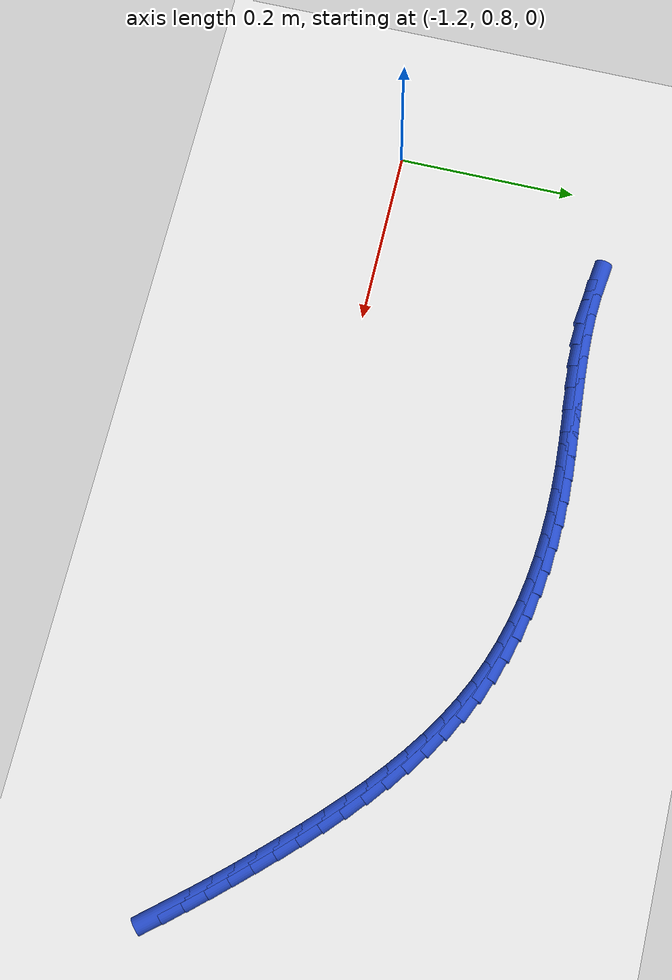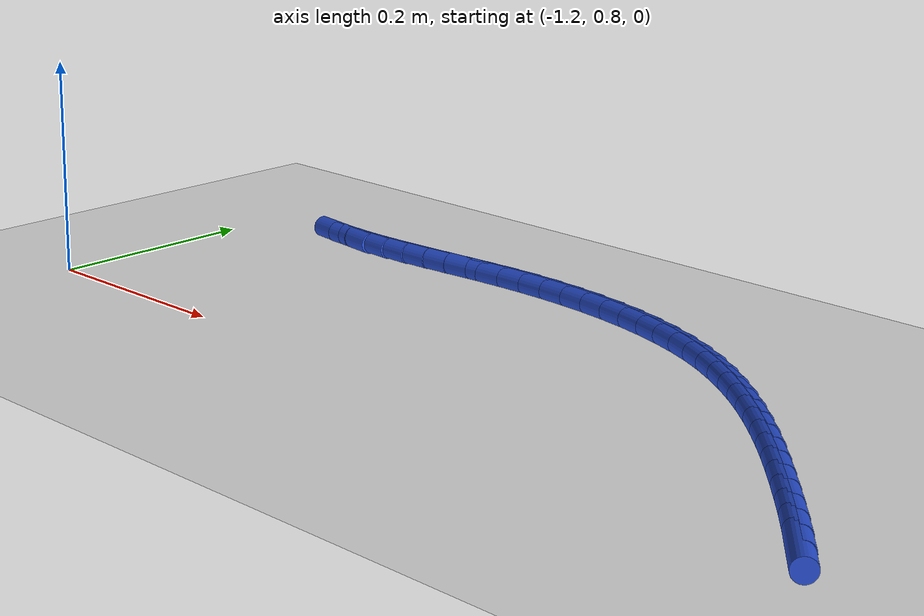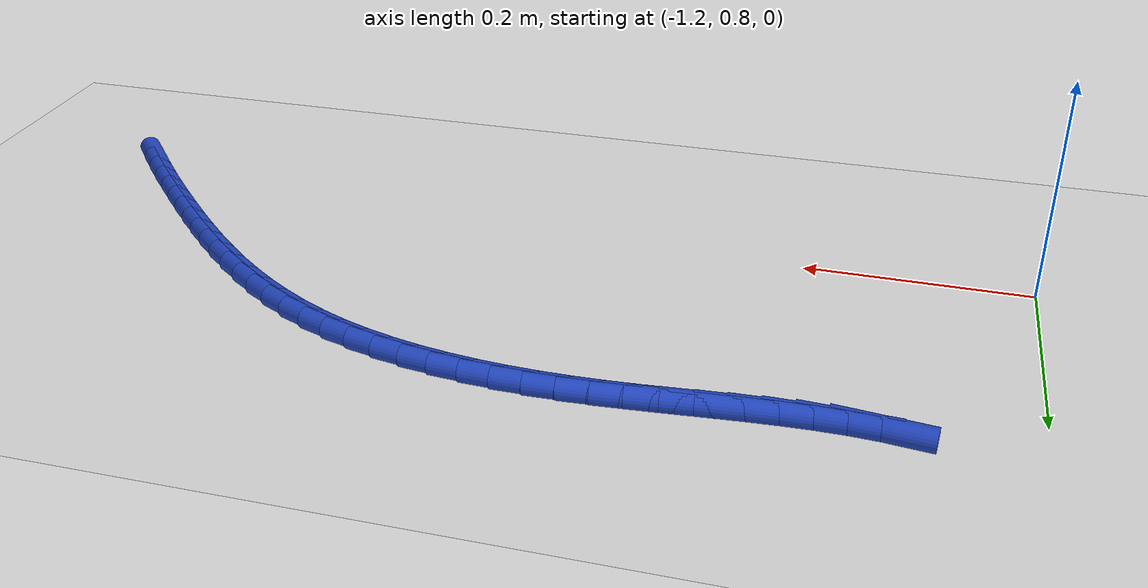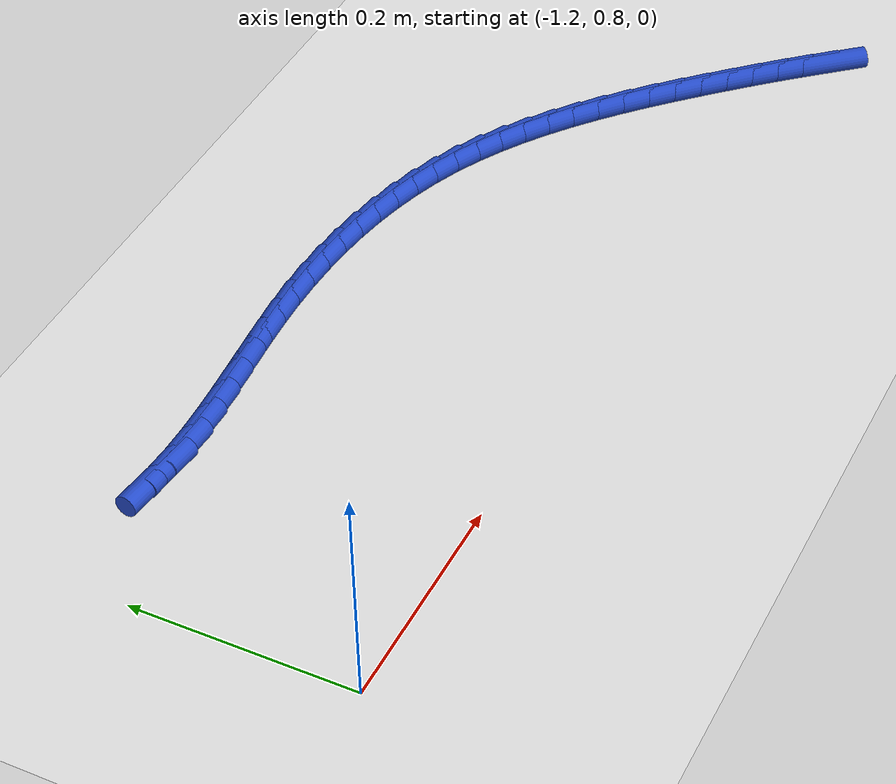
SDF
<sdf version="1.6">
 <world name="default">
  <model name="ground_plane">
   <static>1</static>
   <link name="link">
    <collision name="collision">
     <geometry><plane><normal>0 0 1</normal><size>100 100</size></plane></geometry>
     <surface><friction><ode><mu>100</mu><mu2>50</mu2></ode></friction></surface>
    </collision>
    <visual name="visual">
     <cast_shadows>0</cast_shadows>
     <geometry><plane><normal>0 0 1</normal><size>100 100</size></plane></geometry>
     <material>
      <script><uri>file://media/materials/scripts/gazebo.material</uri><name>Gazebo/WhiteGlow</name></script>
     </material>
    </visual>
   </link>
  </model>
  <model name="line">
   <link name="link_33">
    <pose>-0.33387703514484834 0.7603630949787261 0.01 0 1.57 -0.8708939179314461</pose>
    <collision name="collision">
     <geometry><cylinder><radius>0.01</radius><length>0.08</length></cylinder></geometry>
    </collision>
    <visual name="visual">
     <material>
      <script><name>Gazebo/Blue</name><uri>file://media/materials/scripts/gazebo.material</uri></script>
     </material>
     <geometry><cylinder><radius>0.01</radius><length>0.08</length></cylinder></geometry>
    </visual>
   </link>
   <link name="link_34">
    <pose>-0.35035462740354545 0.7799298569567302 0.01 0 1.57 -0.8523707451338214</pose>
    <collision name="collision">
     <geometry><cylinder><radius>0.01</radius><length>0.08</length></cylinder></geometry>
    </collision>
    <visual name="visual">
     <material>
      <script><name>Gazebo/Blue</name><uri>file://media/materials/scripts/gazebo.material</uri></script>
     </material>
     <geometry><cylinder><radius>0.01</radius><length>0.08</length></cylinder></geometry>
    </visual>
   </link>
   <link name="link_35">
    <pose>-0.36724689501147334 0.7992510672967577 0.01 0 1.57 -0.8364481841553267</pose>
    <collision name="collision">
     <geometry><cylinder><radius>0.01</radius><length>0.08</length></cylinder></geometry>
    </collision>
    <visual name="visual">
     <material>
      <script><name>Gazebo/Blue</name><uri>file://media/materials/scripts/gazebo.material</uri></script>
     </material>
     <geometry><cylinder><radius>0.01</radius><length>0.08</length></cylinder></geometry>
    </visual>
   </link>
   <link name="link_36">
    <pose>-0.38451191001075796 0.8183753733403278 0.01 0 1.57 -0.8231200362365712</pose>
    <collision name="collision">
     <geometry><cylinder><radius>0.01</radius><length>0.08</length></cylinder></geometry>
    </collision>
    <visual name="visual">
     <material>
      <script><name>Gazebo/Blue</name><uri>file://media/materials/scripts/gazebo.material</uri></script>
     </material>
     <geometry><cylinder><radius>0.01</radius><length>0.08</length></cylinder></geometry>
    </visual>
   </link>
   <link name="link_37">
    <pose>-0.4021077444435248 0.8373514224289584 0.01 0 1.57 -0.8119673398129457</pose>
    <collision name="collision">
     <geometry><cylinder><radius>0.01</radius><length>0.08</length></cylinder></geometry>
    </collision>
    <visual name="visual">
     <material>
      <script><name>Gazebo/Blue</name><uri>file://media/materials/scripts/gazebo.material</uri></script>
     </material>
     <geometry><cylinder><radius>0.01</radius><length>0.08</length></cylinder></geometry>
    </visual>
   </link>
   <link name="link_38">
    <pose>-0.4199971539812612 0.8562176282533777 0.01 0 1.57 -0.798811067101024</pose>
    <collision name="collision">
     <geometry><cylinder><radius>0.01</radius><length>0.08</length></cylinder></geometry>
    </collision>
    <visual name="visual">
     <material>
      <script><name>Gazebo/Blue</name><uri>file://media/materials/scripts/gazebo.material</uri></script>
     </material>
     <geometry><cylinder><radius>0.01</radius><length>0.08</length></cylinder></geometry>
    </visual>
   </link>
   <link name="link_39">
    <pose>-0.4381913393459131 0.8749065528899727 0.01 0 1.57 -0.7811426018957505</pose>
    <collision name="collision">
     <geometry><cylinder><radius>0.01</radius><length>0.08</length></cylinder></geometry>
    </collision>
    <visual name="visual">
     <material>
      <script><name>Gazebo/Blue</name><uri>file://media/materials/scripts/gazebo.material</uri></script>
     </material>
     <geometry><cylinder><radius>0.01</radius><length>0.08</length></cylinder></geometry>
    </visual>
   </link>
   <link name="link_40">
    <pose>-0.456730123643245 0.8932882189915008 0.01 0 1.57 -0.7588236196741744</pose>
    <collision name="collision">
     <geometry><cylinder><radius>0.01</radius><length>0.08</length></cylinder></geometry>
    </collision>
    <visual name="visual">
     <material>
      <script><name>Gazebo/Blue</name><uri>file://media/materials/scripts/gazebo.material</uri></script>
     </material>
     <geometry><cylinder><radius>0.01</radius><length>0.08</length></cylinder></geometry>
    </visual>
   </link>
   <link name="link_41">
    <pose>-0.47565370156563785 0.9112318373002578 0.01 0 1.57 -0.7317024142300346</pose>
    <collision name="collision">
     <geometry><cylinder><radius>0.01</radius><length>0.08</length></cylinder></geometry>
    </collision>
    <visual name="visual">
     <material>
      <script><name>Gazebo/Blue</name><uri>file://media/materials/scripts/gazebo.material</uri></script>
     </material>
     <geometry><cylinder><radius>0.01</radius><length>0.08</length></cylinder></geometry>
    </visual>
   </link>
   <link name="link_42">
    <pose>-0.4950022678054731 0.9286066185585412 0.01 0 1.57 -0.6995943235205871</pose>
    <collision name="collision">
     <geometry><cylinder><radius>0.01</radius><length>0.08</length></cylinder></geometry>
    </collision>
    <visual name="visual">
     <material>
      <script><name>Gazebo/Blue</name><uri>file://media/materials/scripts/gazebo.material</uri></script>
     </material>
     <geometry><cylinder><radius>0.01</radius><length>0.08</length></cylinder></geometry>
    </visual>
   </link>
   <link name="link_43">
    <pose>-0.5148160170551314 0.9452817735086463 0.01 0 1.57 -0.6622983901922096</pose>
    <collision name="collision">
     <geometry><cylinder><radius>0.01</radius><length>0.08</length></cylinder></geometry>
    </collision>
    <visual name="visual">
     <material>
      <script><name>Gazebo/Blue</name><uri>file://media/materials/scripts/gazebo.material</uri></script>
     </material>
     <geometry><cylinder><radius>0.01</radius><length>0.08</length></cylinder></geometry>
    </visual>
   </link>
   <link name="link_44">
    <pose>-0.5351351440069936 0.9611265128928697 0.01 0 1.57 -0.6196201285562538</pose>
    <collision name="collision">
     <geometry><cylinder><radius>0.01</radius><length>0.08</length></cylinder></geometry>
    </collision>
    <visual name="visual">
     <material>
      <script><name>Gazebo/Blue</name><uri>file://media/materials/scripts/gazebo.material</uri></script>
     </material>
     <geometry><cylinder><radius>0.01</radius><length>0.08</length></cylinder></geometry>
    </visual>
   </link>
   <link name="link_45">
    <pose>-0.5559998433534409 0.9760100474535072 0.01 0 1.57 -0.5714019634579988</pose>
    <collision name="collision">
     <geometry><cylinder><radius>0.01</radius><length>0.08</length></cylinder></geometry>
    </collision>
    <visual name="visual">
     <material>
      <script><name>Gazebo/Blue</name><uri>file://media/materials/scripts/gazebo.material</uri></script>
     </material>
     <geometry><cylinder><radius>0.01</radius><length>0.08</length></cylinder></geometry>
    </visual>
   </link>
   <link name="link_46">
    <pose>-0.5774503097868543 0.9898015879328559 0.01 0 1.57 -0.5175621459052533</pose>
    <collision name="collision">
     <geometry><cylinder><radius>0.01</radius><length>0.08</length></cylinder></geometry>
    </collision>
    <visual name="visual">
     <material>
      <script><name>Gazebo/Blue</name><uri>file://media/materials/scripts/gazebo.material</uri></script>
     </material>
     <geometry><cylinder><radius>0.01</radius><length>0.08</length></cylinder></geometry>
    </visual>
   </link>
   <link name="link_47">
    <pose>-0.599526737999615 1.0023703450732118 0.01 0 1.57 -0.45814125110068626</pose>
    <collision name="collision">
     <geometry><cylinder><radius>0.01</radius><length>0.08</length></cylinder></geometry>
    </collision>
    <visual name="visual">
     <material>
      <script><name>Gazebo/Blue</name><uri>file://media/materials/scripts/gazebo.material</uri></script>
     </material>
     <geometry><cylinder><radius>0.01</radius><length>0.08</length></cylinder></geometry>
    </visual>
   </link>
   <link name="link_48">
    <pose>-0.6222693226841037 1.0135855296168714 0.01 0 1.57 -0.39475051642981374</pose>
    <collision name="collision">
     <geometry><cylinder><radius>0.01</radius><length>0.08</length></cylinder></geometry>
    </collision>
    <visual name="visual">
     <material>
      <script><name>Gazebo/Blue</name><uri>file://media/materials/scripts/gazebo.material</uri></script>
     </material>
     <geometry><cylinder><radius>0.01</radius><length>0.08</length></cylinder></geometry>
    </visual>
   </link>
   <link name="link_49">
    <pose>-0.6456992980306332 1.0233469028677804 0.01 0 1.57 -0.33352731708520483</pose>
    <collision name="collision">
     <geometry><cylinder><radius>0.01</radius><length>0.08</length></cylinder></geometry>
    </collision>
    <visual name="visual">
     <material>
      <script><name>Gazebo/Blue</name><uri>file://media/materials/scripts/gazebo.material</uri></script>
     </material>
     <geometry><cylinder><radius>0.01</radius><length>0.08</length></cylinder></geometry>
    </visual>
   </link>
   <link name="link_50">
    <pose>-0.6697582162471432 1.0316826156264276 0.01 0 1.57 -0.2760789925601923</pose>
    <collision name="collision">
     <geometry><cylinder><radius>0.01</radius><length>0.08</length></cylinder></geometry>
    </collision>
    <visual name="visual">
     <material>
      <script><name>Gazebo/Blue</name><uri>file://media/materials/scripts/gazebo.material</uri></script>
     </material>
     <geometry><cylinder><radius>0.01</radius><length>0.08</length></cylinder></geometry>
    </visual>
   </link>
   <link name="link_51">
    <pose>-0.6943667009412988 1.0386545404001797 0.01 0 1.57 -0.222350610748899</pose>
    <collision name="collision">
     <geometry><cylinder><radius>0.01</radius><length>0.08</length></cylinder></geometry>
    </collision>
    <visual name="visual">
     <material>
      <script><name>Gazebo/Blue</name><uri>file://media/materials/scripts/gazebo.material</uri></script>
     </material>
     <geometry><cylinder><radius>0.01</radius><length>0.08</length></cylinder></geometry>
    </visual>
   </link>
   <link name="link_52">
    <pose>-0.7194453756318744 1.0443245498396265 0.01 0 1.57 -0.1722095091716396</pose>
    <collision name="collision">
     <geometry><cylinder><radius>0.01</radius><length>0.08</length></cylinder></geometry>
    </collision>
    <visual name="visual">
     <material>
      <script><name>Gazebo/Blue</name><uri>file://media/materials/scripts/gazebo.material</uri></script>
     </material>
     <geometry><cylinder><radius>0.01</radius><length>0.08</length></cylinder></geometry>
    </visual>
   </link>
   <link name="link_53">
    <pose>-0.7449148638376442 1.0487545165953598 0.01 0 1.57 -0.12546931119351024</pose>
    <collision name="collision">
     <geometry><cylinder><radius>0.01</radius><length>0.08</length></cylinder></geometry>
    </collision>
    <visual name="visual">
     <material>
      <script><name>Gazebo/Blue</name><uri>file://media/materials/scripts/gazebo.material</uri></script>
     </material>
     <geometry><cylinder><radius>0.01</radius><length>0.08</length></cylinder></geometry>
    </visual>
   </link>
   <link name="link_54">
    <pose>-0.7706957890773829 1.052006313317971 0.01 0 1.57 -0.08190991088015818</pose>
    <collision name="collision">
     <geometry><cylinder><radius>0.01</radius><length>0.08</length></cylinder></geometry>
    </collision>
    <visual name="visual">
     <material>
      <script><name>Gazebo/Blue</name><uri>file://media/materials/scripts/gazebo.material</uri></script>
     </material>
     <geometry><cylinder><radius>0.01</radius><length>0.08</length></cylinder></geometry>
    </visual>
   </link>
   <link name="link_55">
    <pose>-0.7967087748698647 1.0541418126580515 0.01 0 1.57 -0.041293041287598295</pose>
    <collision name="collision">
     <geometry><cylinder><radius>0.01</radius><length>0.08</length></cylinder></geometry>
    </collision>
    <visual name="visual">
     <material>
      <script><name>Gazebo/Blue</name><uri>file://media/materials/scripts/gazebo.material</uri></script>
     </material>
     <geometry><cylinder><radius>0.01</radius><length>0.08</length></cylinder></geometry>
    </visual>
   </link>
   <link name="link_56">
    <pose>-0.8228744447338638 1.0552228872661922 0.01 0 1.57 -0.003373690575349256</pose>
    <collision name="collision">
     <geometry><cylinder><radius>0.01</radius><length>0.08</length></cylinder></geometry>
    </collision>
    <visual name="visual">
     <material>
      <script><name>Gazebo/Blue</name><uri>file://media/materials/scripts/gazebo.material</uri></script>
     </material>
     <geometry><cylinder><radius>0.01</radius><length>0.08</length></cylinder></geometry>
    </visual>
   </link>
   <link name="link_57">
    <pose>-0.8491134221881547 1.055311409792985 0.01 0 1.57 0.03177036529365382</pose>
    <collision name="collision">
     <geometry><cylinder><radius>0.01</radius><length>0.08</length></cylinder></geometry>
    </collision>
    <visual name="visual">
     <material>
      <script><name>Gazebo/Blue</name><uri>file://media/materials/scripts/gazebo.material</uri></script>
     </material>
     <geometry><cylinder><radius>0.01</radius><length>0.08</length></cylinder></geometry>
    </visual>
   </link>
   <link name="link_58">
    <pose>-0.8753478586387028 1.054477651625166 0.01 0 1.57 0.059612233916372506</pose>
    <collision name="collision">
     <geometry><cylinder><radius>0.01</radius><length>0.08</length></cylinder></geometry>
    </collision>
    <visual name="visual">
     <material>
      <script><name>Gazebo/Blue</name><uri>file://media/materials/scripts/gazebo.material</uri></script>
     </material>
     <geometry><cylinder><radius>0.01</radius><length>0.08</length></cylinder></geometry>
    </visual>
   </link>
   <link name="link_59">
    <pose>-0.901522389609654 1.0529154784679629 0.01 0 1.57 0.07664816412750622</pose>
    <collision name="collision">
     <geometry><cylinder><radius>0.01</radius><length>0.08</length></cylinder></geometry>
    </collision>
    <visual name="visual">
     <material>
      <script><name>Gazebo/Blue</name><uri>file://media/materials/scripts/gazebo.material</uri></script>
     </material>
     <geometry><cylinder><radius>0.01</radius><length>0.08</length></cylinder></geometry>
    </visual>
   </link>
   <link name="link_60">
    <pose>-0.9275987678306554 1.0509128486359425 0.01 0 1.57 0.08279923389420403</pose>
    <collision name="collision">
     <geometry><cylinder><radius>0.01</radius><length>0.08</length></cylinder></geometry>
    </collision>
    <visual name="visual">
     <material>
      <script><name>Gazebo/Blue</name><uri>file://media/materials/scripts/gazebo.material</uri></script>
     </material>
     <geometry><cylinder><radius>0.01</radius><length>0.08</length></cylinder></geometry>
    </visual>
   </link>
   <link name="link_61">
    <pose>-0.9535391754466055 1.0487600809225226 0.01 0 1.57 0.0779500344412997</pose>
    <collision name="collision">
     <geometry><cylinder><radius>0.01</radius><length>0.08</length></cylinder></geometry>
    </collision>
    <visual name="visual">
     <material>
      <script><name>Gazebo/Blue</name><uri>file://media/materials/scripts/gazebo.material</uri></script>
     </material>
     <geometry><cylinder><radius>0.01</radius><length>0.08</length></cylinder></geometry>
    </visual>
   </link>
   <link name="link_62">
    <pose>-0.979305794602404 1.0467474941211201 0.01 0 1.57 0.0618301584156629</pose>
    <collision name="collision">
     <geometry><cylinder><radius>0.01</radius><length>0.08</length></cylinder></geometry>
    </collision>
    <visual name="visual">
     <material>
      <script><name>Gazebo/Blue</name><uri>file://media/materials/scripts/gazebo.material</uri></script>
     </material>
     <geometry><cylinder><radius>0.01</radius><length>0.08</length></cylinder></geometry>
    </visual>
   </link>
   <link name="link_63">
    <pose>-1.00486080744295 1.0451654070251526 0.01 0 1.57 0.03402158652165355</pose>
    <collision name="collision">
     <geometry><cylinder><radius>0.01</radius><length>0.08</length></cylinder></geometry>
    </collision>
    <visual name="visual">
     <material>
      <script><name>Gazebo/Blue</name><uri>file://media/materials/scripts/gazebo.material</uri></script>
     </material>
     <geometry><cylinder><radius>0.01</radius><length>0.08</length></cylinder></geometry>
    </visual>
   </link>
   <link name="link_64">
    <pose>-1.0301663961131422 1.0443041384280367 0.01 0 1.57 -0.005990280040282577</pose>
    <collision name="collision">
     <geometry><cylinder><radius>0.01</radius><length>0.08</length></cylinder></geometry>
    </collision>
    <visual name="visual">
     <material>
      <script><name>Gazebo/Blue</name><uri>file://media/materials/scripts/gazebo.material</uri></script>
     </material>
     <geometry><cylinder><radius>0.01</radius><length>0.08</length></cylinder></geometry>
    </visual>
   </link>
   <link name="link_65">
    <pose>-1.0551847427578798 1.04445400712319 0.01 0 1.57 -0.0587065262863021</pose>
    <collision name="collision">
     <geometry><cylinder><radius>0.01</radius><length>0.08</length></cylinder></geometry>
    </collision>
    <visual name="visual">
     <material>
      <script><name>Gazebo/Blue</name><uri>file://media/materials/scripts/gazebo.material</uri></script>
     </material>
     <geometry><cylinder><radius>0.01</radius><length>0.08</length></cylinder></geometry>
    </visual>
   </link>
   <link name="link_66">
    <pose>-1.0798780295220622 1.04590533190403 0.01 0 1.57 -0.12041775519391185</pose>
    <collision name="collision">
     <geometry><cylinder><radius>0.01</radius><length>0.08</length></cylinder></geometry>
    </collision>
    <visual name="visual">
     <material>
      <script><name>Gazebo/Blue</name><uri>file://media/materials/scripts/gazebo.material</uri></script>
     </material>
     <geometry><cylinder><radius>0.01</radius><length>0.08</length></cylinder></geometry>
    </visual>
   </link>
  </model>
 </world>
</sdf>
